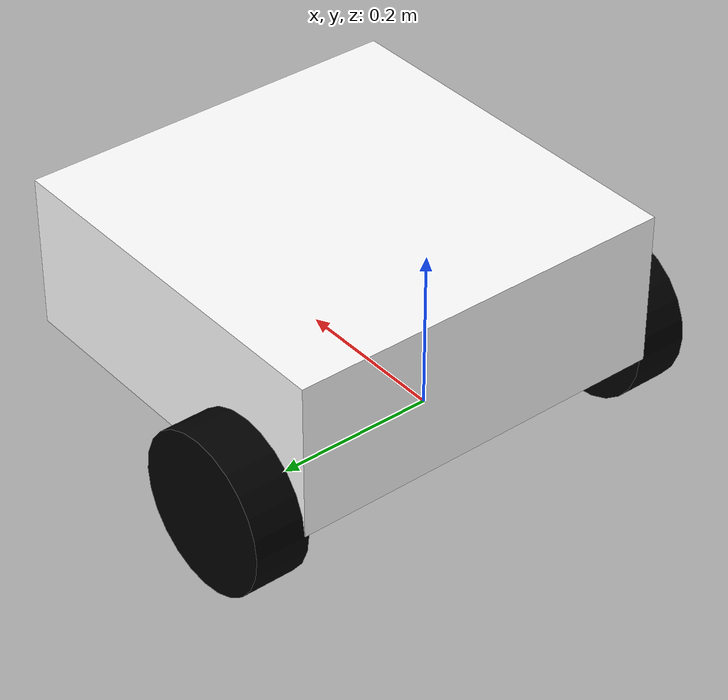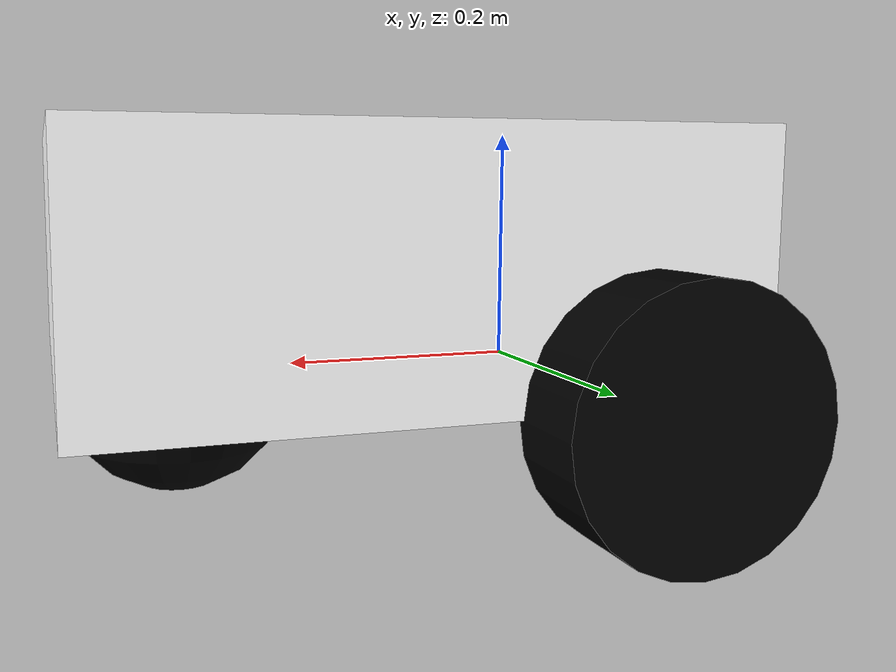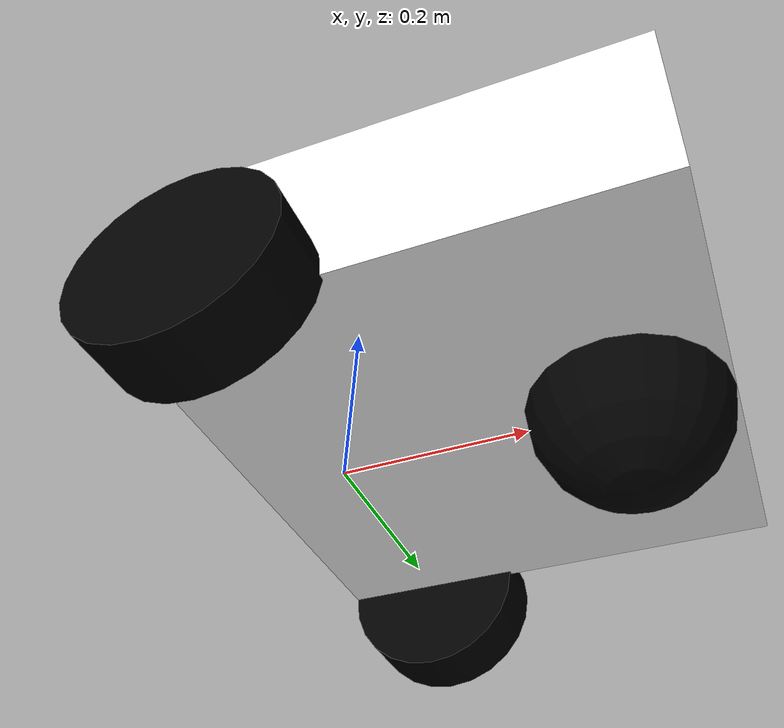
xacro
<?xml version="1.0"?>
<robot xmlns:xacro="http://www.ros.org/wiki/xacro">

    <xacro:include filename="inertial_macros.xacro" />

    <material name="white">
        <color rgba="1 1 1 1" />
    </material>

    <material name="orange">
        <color rgba="1 0.3 0.1 1" />
    </material>

    <material name="blue">
        <color rgba="0.2 0.2 1 1" />
    </material>

    <material name="black">
        <color rgba="0 0 0 1" />
    </material>

    <material name="red">
        <color rgba="1 0 0 1" />
    </material>

    <!-- BASE LINK -->

    <link name="base_link">

    </link>

    <!-- BASE_FOOTPRINT LINK -->

    <joint name="base_footprint_joint" type="fixed">
        <parent link="base_link"/>
        <child link="base_footprint"/>
        <origin xyz="0 0 0" rpy="0 0 0"/>
    </joint>

    <link name="base_footprint">
    </link>

    <!-- CHASSIS LINK -->

    <joint name="chassis_joint" type="fixed">
        <parent link="base_link"/>
        <child link="chassis"/>
        <origin xyz="-0.1 0 0"/>
    </joint>

    <link name="chassis">
        <visual>
            <origin xyz="0.25 0 0.1"/>
            <geometry>
                <box size="0.5 0.5 0.2"/>
            </geometry>
            <material name="white"/>
        </visual>
        <collision>
            <origin xyz="0.25 0 0.1"/>
            <geometry>
                <box size="0.5 0.5 0.2"/>
            </geometry>
        </collision>
        <xacro:inertial_box mass="5" x="0.5" y="0.5" z="0.2">
            <origin xyz="0.25 0 0.1" rpy="0 0 0"/>
        </xacro:inertial_box>
    </link>

    <gazebo reference="chassis">
        <material>Gazebo/White</material>
    </gazebo>

    <!-- LEFT WHEEL LINK -->

    <joint name="left_wheel_joint" type="continuous">
        <parent link="base_link"/>
        <child link="left_wheel"/>
        <origin xyz="0 0.279 0" rpy="-${pi/2} 0 0"/>
        <axis xyz="0 0 1"/>
    </joint>

    <link name ="left_wheel">
        <visual>
            <geometry>
                <cylinder radius="0.1" length="0.07"/>
            </geometry>
            <material name="black"/>
        </visual>
        <collision>
            <geometry>
                <cylinder radius="0.1" length="0.07"/>
            </geometry>
        </collision>
        <xacro:inertial_cylinder mass="0.1" length="0.07" radius="0.1">
            <origin xyz="0 0 0" rpy="0 0 0"/>
        </xacro:inertial_cylinder>
    </link>

    <gazebo reference="left_wheel">
        <material>Gazebo/Black</material>
    </gazebo>

    <!-- RIGHT WHEEL LINK -->

    <joint name="right_wheel_joint" type="continuous">
        <parent link="base_link"/>
        <child link="right_wheel"/>
        <origin xyz="0 -0.279 0" rpy="${pi/2} 0 0"/>
        <axis xyz="0 0 -1"/>
    </joint>

    <link name ="right_wheel">
        <visual>
            <geometry>
                <cylinder radius="0.1" length="0.07"/>
            </geometry>
            <material name="black"/>
        </visual>
        <collision>
            <geometry>
                <cylinder radius="0.1" length="0.07"/>
            </geometry>
        </collision>
        <xacro:inertial_cylinder mass="0.1" length="0.07" radius="0.1">
            <origin xyz="0 0 0" rpy="0 0 0"/>
        </xacro:inertial_cylinder>
    </link>

    <gazebo reference="right_wheel">
        <material>Gazebo/Black</material>
    </gazebo>

    <!-- CASTER WHEEL LINK-->

    <joint name="caster_wheel_joint" type="fixed">
        <parent link="chassis"/>
        <child link="caster_wheel"/>
        <origin xyz="0.4 0 0"/>
    </joint>

        <link name ="caster_wheel">
        <visual>
            <geometry>
                <sphere radius="0.1"/>
            </geometry>
            <material name="black"/>
        </visual>
        <collision>
            <geometry>
                <sphere radius="0.1"/>
            </geometry>
        </collision>
        <xacro:inertial_sphere mass="0.1" radius="0.1">
            <origin xyz="0 0 0" rpy="0 0 0"/>
        </xacro:inertial_sphere>
    </link>

    <gazebo reference="caster_wheel">
        <material>Gazebo/Black</material>
        <mu1 value="0.001"/>
        <mu2 value="0.001"/>
    </gazebo>
</robot>
